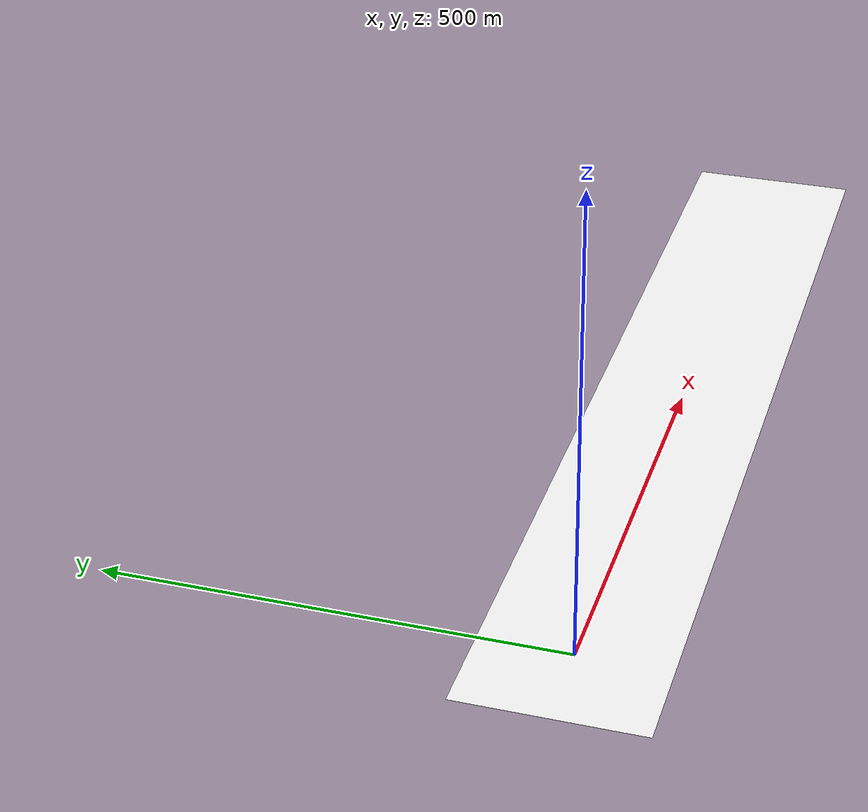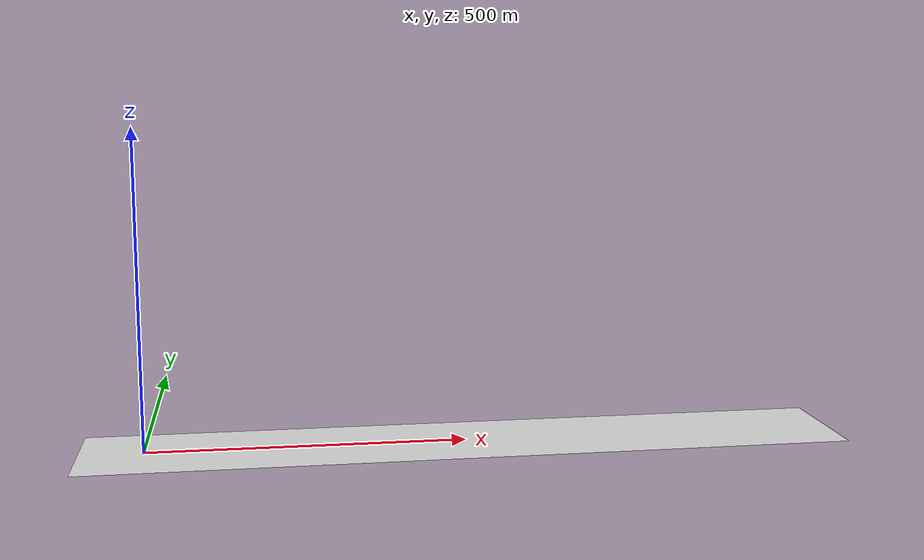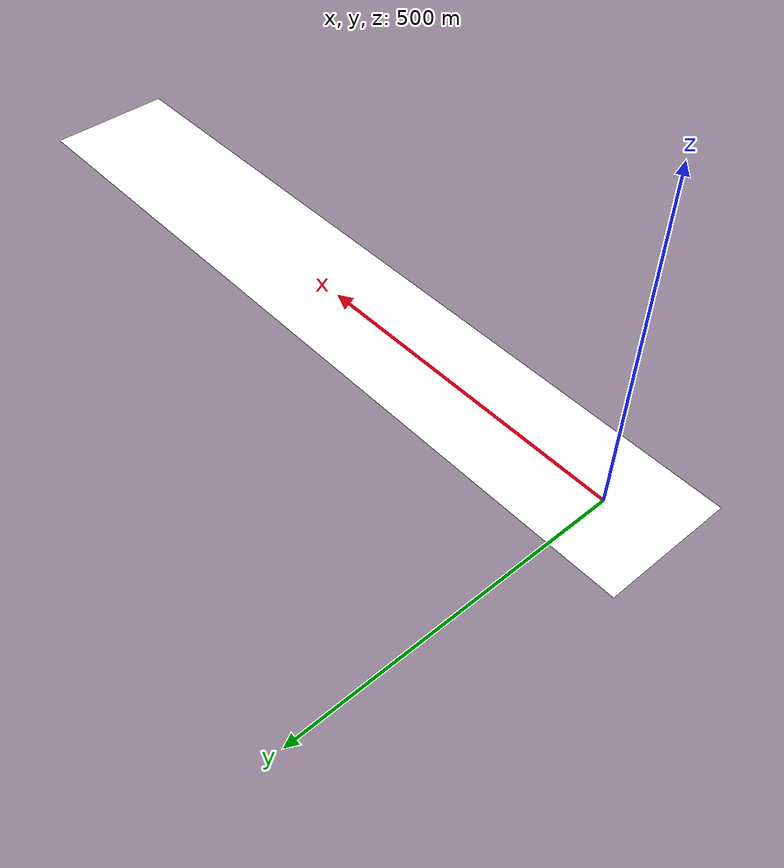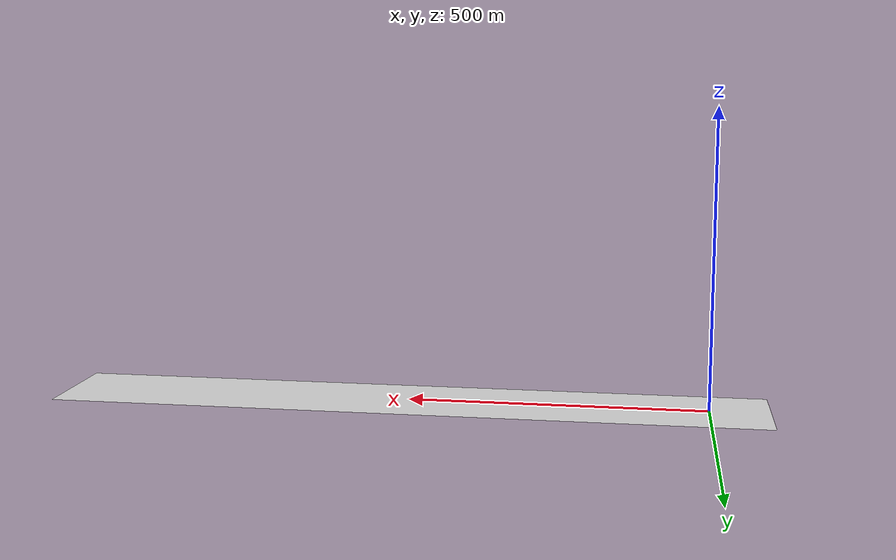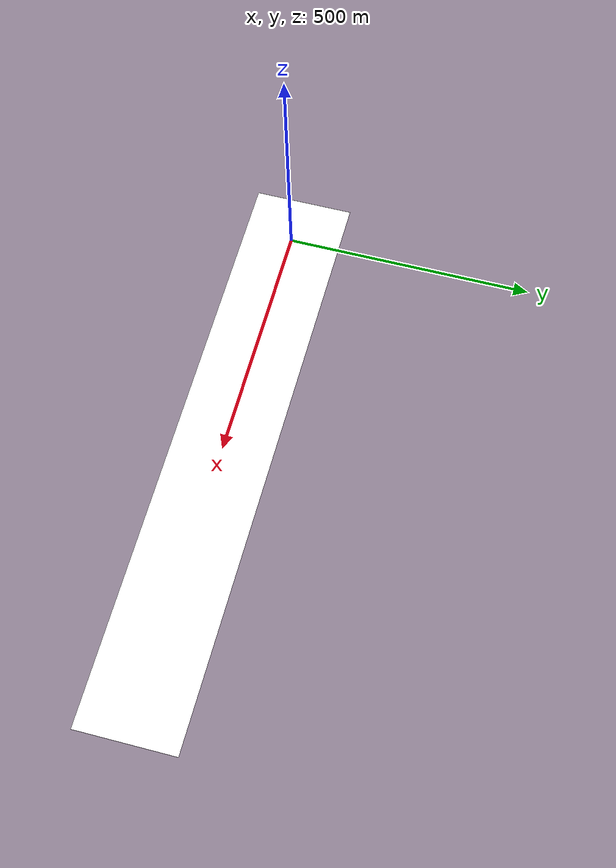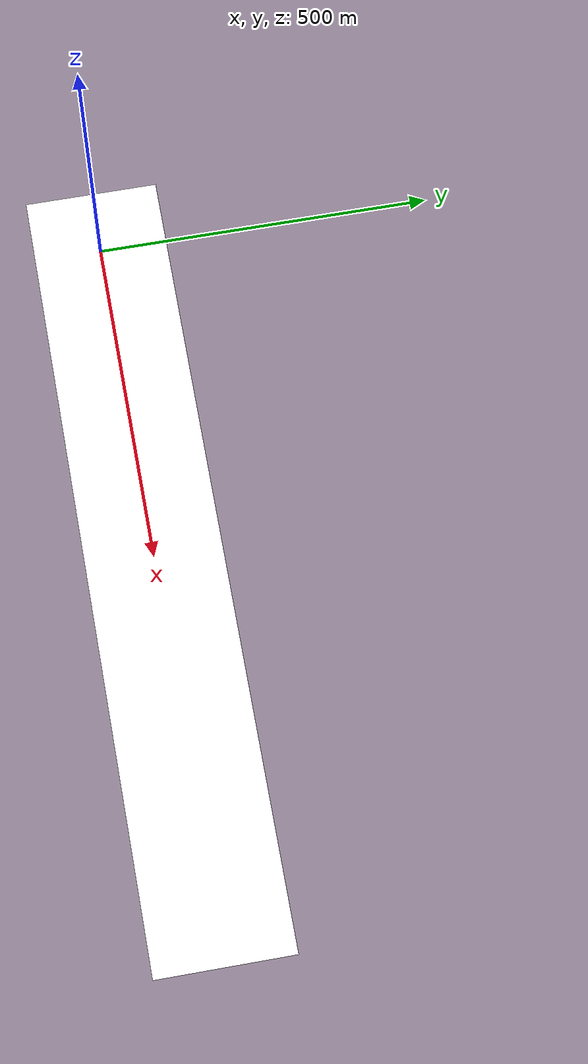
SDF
<?xml version="1.0"?>
<sdf version="1.9">
  <model name="concrete_ground_1km">
    <static>true</static>
    <link name="link">
      <collision name="collision">
        <geometry>
          <plane>
            <normal>0 0 1</normal>
            <size>1 1</size>
          </plane>
        </geometry>
        <surface>
          <friction>
            <ode><mu>100</mu><mu2>50</mu2></ode>
          </friction>
        </surface>
      </collision>
      <visual name="visual">
        <cast_shadows>false</cast_shadows>
        <geometry>
          <mesh>
            <uri>model://concrete_ground_1km/meshes/concrete_ground_1km.obj</uri>
          </mesh>
        </geometry>
        <material>
          <diffuse>1 1 1 1</diffuse>
          <specular>0 0 0 1</specular>
          <pbr>
            <metal>
              <albedo_map>model://concrete_ground_1km/materials/textures/concrete_neutral_color.png</albedo_map>
              <emissive_map>model://concrete_ground_1km/materials/textures/concrete_neutral_color.png</emissive_map>
              <roughness>1.0</roughness>
            </metal>
          </pbr>
        </material>
      </visual>
    </link>
  </model>
</sdf>
